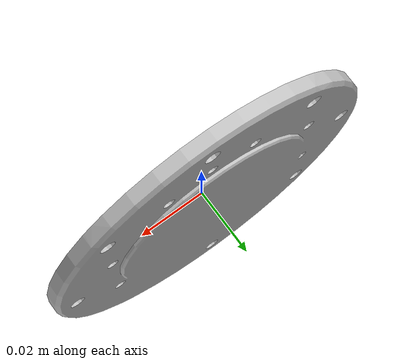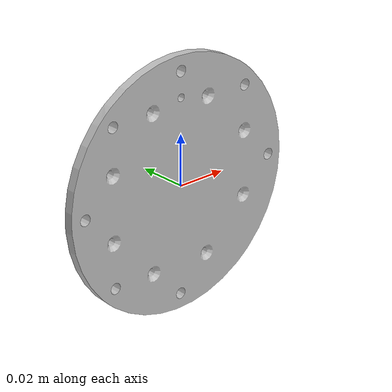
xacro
<?xml version="1.0" encoding="utf-8"?>
<robot
  name="coupling2"
  xmlns:xacro="http://www.ros.org/wiki/xacro">
  <link
    name="link_coupling2">
    <inertial>
      <origin
        xyz="5.88703171151242E-05 -8.94009617138191E-05 -0.00263303385335754"
        rpy="0 0 0" />
      <mass
        value="0.0395051823054991" />
      <inertia
        ixx="2.30288040660326E-05"
        ixy="7.2150343292927E-08"
        ixz="-6.58246910799801E-10"
        iyy="2.3069990933938E-05"
        iyz="9.99619328617187E-10"
        izz="4.59060223616661E-05" />
    </inertial>
    <visual>
      <origin
        xyz="0 0 0"
        rpy="0 0 0" />
      <geometry>
        <mesh
          filename="package://system_urdf/meshes/roller_probe_pieces/coupling2.STL" />
      </geometry>
      <material
        name="">
        <color
          rgba="0.749019607843137 0.749019607843137 0.749019607843137 1" />
      </material>
    </visual>
    <collision>
      <origin
        xyz="0 0 0"
        rpy="0 0 0" />
      <geometry>
        <mesh
          filename="package://system_urdf/meshes/roller_probe_pieces/coupling2.STL" />
      </geometry>
    </collision>
  </link>
</robot>
